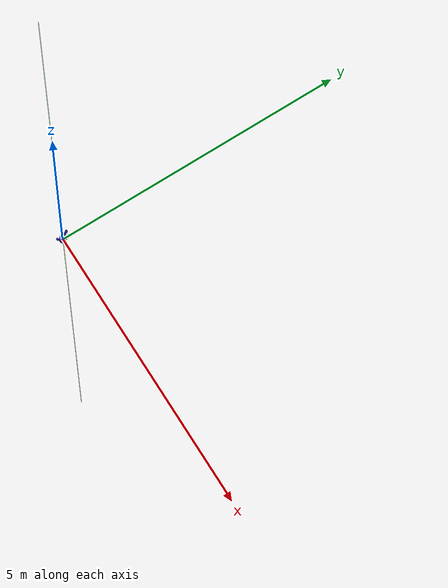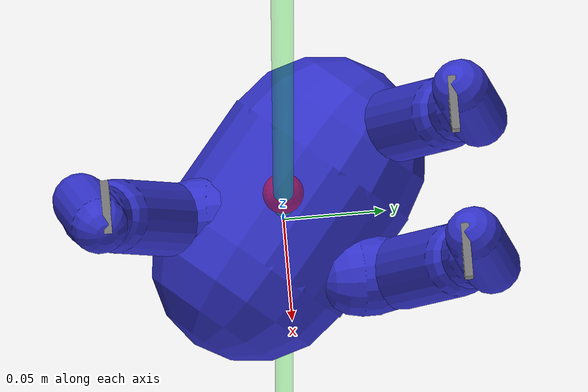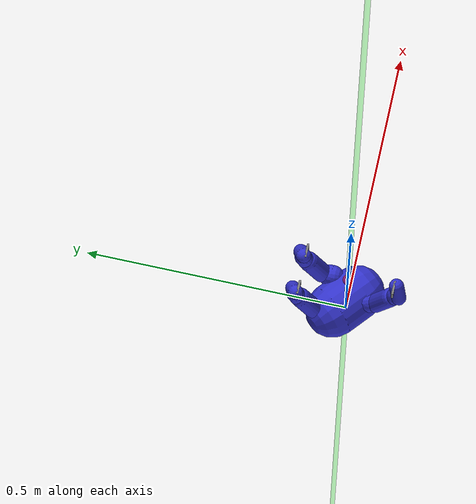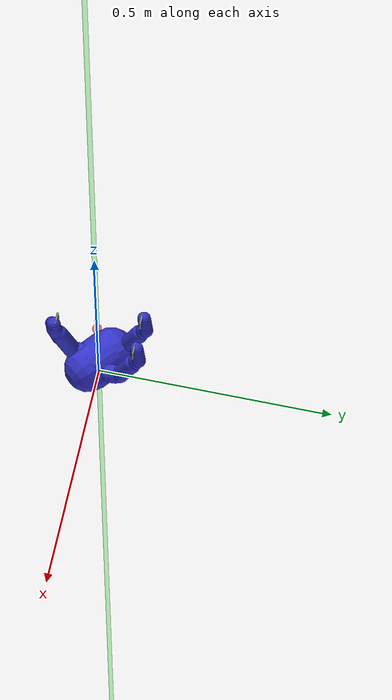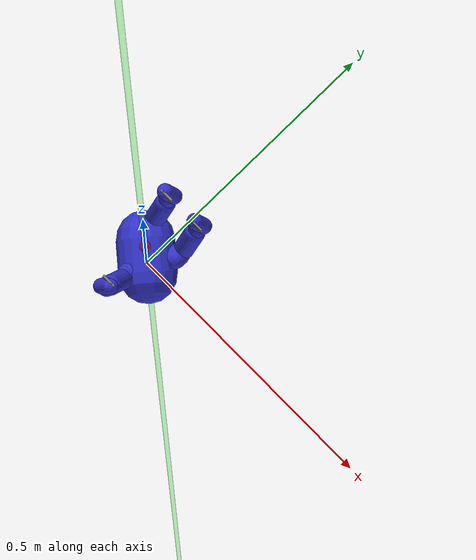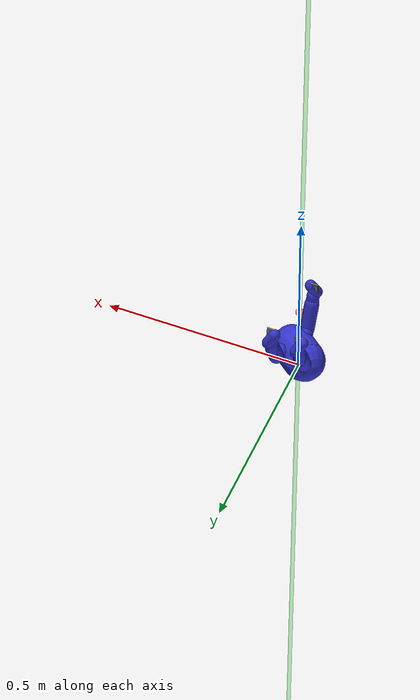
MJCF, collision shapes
<mujoco model="s-model_articulated">
  <asset>
    <mesh name="palm" file="meshes/robotiq_s_gripper/palm.stl"/>
    <mesh name="link_0" file="meshes/robotiq_s_gripper/link_0.stl"/>
    <mesh name="link_1" file="meshes/robotiq_s_gripper/link_1.stl"/>
    <mesh name="link_2" file="meshes/robotiq_s_gripper/link_2.stl"/>
    <mesh name="link_3" file="meshes/robotiq_s_gripper/link_3.stl"/>
    <mesh name="palm_vis" file="meshes/robotiq_s_gripper/palm_vis.stl"/>
    <mesh name="link_0_vis" file="meshes/robotiq_s_gripper/link_0_vis.stl"/>
    <mesh name="link_1_vis" file="meshes/robotiq_s_gripper/link_1_vis.stl"/>
    <mesh name="link_2_vis" file="meshes/robotiq_s_gripper/link_2_vis.stl"/>
    <mesh name="link_3_vis" file="meshes/robotiq_s_gripper/link_3_vis.stl"/>
  </asset>
  <tendon>
    <fixed name="middle12_cpl" range="0 1" limited="true">
      <joint joint="finger_middle_joint_1" coef="0.5"/>
      <joint joint="finger_middle_joint_2" coef="0.5"/>
    </fixed>
    <fixed name="middle23_cpl" range="0 1" limited="true">
      <joint joint="finger_middle_joint_2" coef="0.5"/>
      <joint joint="finger_middle_joint_3" coef="-1"/>
    </fixed>
    <fixed name="finger2_12_cpl" range="0 1" limited="true">
      <joint joint="finger_2_joint_1" coef="0.5"/>
      <joint joint="finger_2_joint_2" coef="0.5"/>
    </fixed>
    <fixed name="finger2_23_cpl" range="0 1" limited="true">
      <joint joint="finger_2_joint_2" coef="0.5"/>
      <joint joint="finger_2_joint_3" coef="-1"/>
    </fixed>
    <fixed name="finger1_12_cpl" range="0 1" limited="true">
      <joint joint="finger_1_joint_1" coef="0.5"/>
      <joint joint="finger_1_joint_2" coef="0.5"/>
    </fixed>
    <fixed name="finger1_23_cpl" range="0 1" limited="true">
      <joint joint="finger_1_joint_2" coef="0.5"/>
      <joint joint="finger_1_joint_3" coef="-1"/>
    </fixed>
  </tendon>
  <equality>
    <tendon name="middle12_cpl" tendon1="middle12_cpl"/>
    <tendon name="middle23_cpl" tendon1="middle23_cpl"/>
    <tendon name="finger2_12_cpl" tendon1="finger2_12_cpl"/>
    <tendon name="finger2_23_cpl" tendon1="finger2_23_cpl"/>
    <tendon name="finger1_12_cpl" tendon1="finger1_12_cpl"/>
    <tendon name="finger1_23_cpl" tendon1="finger1_23_cpl"/>
    <joint name="finger_12_scissor" joint1="palm_finger_2_joint" joint2="palm_finger_1_joint" polycoef="0 -1 0 0 0"/>
  </equality>
  <actuator>
    <position name="finger_1" ctrllimited="true" kp="20" joint="finger_1_joint_1" ctrlrange="0 1.2217"/>
    <position name="finger_2" ctrllimited="true" kp="20" joint="finger_2_joint_1" ctrlrange="0 1.2217"/>
    <position name="middle_finger" ctrllimited="true" kp="20" joint="finger_middle_joint_1" ctrlrange="0 1.2217"/>
    <position name="finger_scissor" ctrllimited="true" kp="20" joint="palm_finger_1_joint" ctrlrange="-0.29 0.29"/>
  </actuator>
  <worldbody>
    <body name="palm" pos="0 0 0.045" quat="-0.49921826 -0.50133955 0.50133955 0.49921826">
      <site name="ft_frame" pos="0 0 0" size="0.01 0.01 0.01" rgba="1 0 0 1" type="sphere" group="1"/>
      <inertial pos="-0.00134236 0.00263073 -1.01672e-08" quat="0.489887 0.489849 0.509908 0.509954" mass="1.20044" diaginertia="0.00263541 0.00218876 0.00210987"/>
      <geom name="palm_visual" type="mesh" contype="0" conaffinity="0" group="1" rgba="0 0 0 1" mesh="palm_vis"/>
      <geom name="palm" contype="0" type="capsule" group="0" rgba="0.2 0.2 0.8 0.5" pos="-0.002818 0.003976 0.001979" quat="0.342778 0.083170 0.935728 0.000000" size="0.051703 0.029495"/>
      <body name="eef" pos="0 0.15 0" quat="0.707105 -0.707105 0 0">
        <site name="grip_site" pos="0 0 0" size="0.01 0.01 0.01" rgba="1 0 0 0.5" type="sphere" group="1"/>
        <site name="ee_x" pos="0.1 0 0" size="0.005 .1" quat="0.707105  0 0.707108 0 " rgba="1 0 0 0" type="cylinder" group="1"/>
        <site name="ee_y" pos="0 0.1 0" size="0.005 .1" quat="0.707105 0.707108 0 0" rgba="0 1 0 0" type="cylinder" group="1"/>
        <site name="ee_z" pos="0 0 0.1" size="0.005 .1" quat="1 0 0 0" rgba="0 0 1 0" type="cylinder" group="1"/>
        <site name="grip_site_cylinder" pos="0 0 0" size="0.005 10" rgba="0 1 0 0.3" type="cylinder" group="1"/>
      </body>
      <body name="finger_1_link_0" pos="-0.0455 0.0214 0.036" quat="-2.59838e-06 0.706825 0.707388 2.59631e-06">
        <inertial pos="-0.0381134 0.026928 0.0359997" quat="0.0835458 0.702169 -0.0835699 0.702136" mass="0.0494545" diaginertia="1.39633e-05 1.10443e-05 9.98401e-06"/>
        <joint damping="0.1" name="palm_finger_1_joint" pos="0 0 0" axis="0 1 0" limited="true" range="-0.29 0.29" ref="0.29"/>
        <geom name="f1_l0_vis" pos="0.02 0 0" type="mesh" contype="0" conaffinity="0" group="1" rgba="0 0 0 1" mesh="link_0_vis"/>
        <geom name="f1_l0" contype="0" pos="0.005703 0.006546 -0.000005" type="capsule" rgba="0.2 0.2 0.8 0.5" group="0" quat="0.711081 -0.692088 0.124008 0.000000" size="0.019595 0.004898"/>
        <body name="finger_1_link_1" pos="0.02 0 0">
          <inertial pos="0.0184407 -0.0219985 -5.83379e-12" quat="0.170512 0.68624 -0.170512 0.68624" mass="0.0859984" diaginertia="6.46024e-05 5.9524e-05 1.50124e-05"/>
          <joint damping="0.03" name="finger_1_joint_1" pos="0 0 0" axis="0 0 1" limited="true" range="0 3.1416"/>
          <geom name="f1_l1_vis" pos="0.05 -0.028 0" quat="0.96639 0 0 -0.257081" type="mesh" contype="0" conaffinity="0" group="1" rgba="0 0 0 1" mesh="link_1_vis"/>
          <geom name="f1_l1" pos="0.020202 -0.023205 0.000000" quat="0.683341 -0.109567 -0.698566 -0.181784" type="capsule" rgba="0.2 0.2 0.8 0.5" group="0" size="0.018232 0.034453"/>
          <body name="finger_1_link_2" pos="0.05 -0.028 0" quat="0.96639 0 0 -0.257081">
            <inertial pos="0.0147516 -0.00823285 -0.000546645" quat="-0.0619175 0.704391 0.0619175 0.704391" mass="0.0461767" diaginertia="1.70717e-05 1.67626e-05 5.90767e-06"/>
            <joint damping="0.03" name="finger_1_joint_2" pos="0 0 0" axis="0 0 1" limited="true" range="0 3.1416"/>
            <geom name="f1_l2_vis" pos="0.039 0 0.0075" type="mesh" contype="0" conaffinity="0" group="1" rgba="0 0 0 1" mesh="link_2_vis"/>
            <geom name="f1_l2" pos="0.011309 -0.008899 -0.000547" type="capsule" rgba="0.2 0.2 0.8 0.5" group="0" quat="0.707107 -0.150366 0.690934 0.000000" size="0.015949 0.019375"/>
            <body name="finger_1_link_3" pos="0.039 0 0">
              <inertial pos="0.00866021 0.00239356 2.11103e-08" quat="0.653623 0.653626 -0.269769 -0.269767" mass="0.0227212" diaginertia="5.48529e-06 4.69221e-06 2.01594e-06"/>
              <joint damping="0.03" name="finger_1_joint_3" pos="0 0 0" axis="0 0 1" limited="true" range="0 3.1416"/>
              <geom name="f1_l3_vis" quat="0.96639 0 0 0.257081" type="mesh" contype="0" conaffinity="0" group="1" rgba="1 1 1 1" mesh="link_3_vis"/>
              <geom name="f1_l3" quat="0.823459 0.274703 -0.445496 0.219058" type="capsule" rgba="0.2 0.2 0.8 0.5" group="0" pos="0.010388 0.004421 -0.000626" size="0.014075 0.015375"/>
              <geom type="box" group="0" pos="0.018 0.018 0" quat="0.9659258 0 0 0.258819" size="0.013 0.002 0.013" name="f1_tip_collision"/>
              <geom type="box" group="0" pos="0.017 0.019 0" quat="0.9659258 0 0 0.258819" size="0.011 0.001 0.012" name="f1_pad_collision"/>
            </body>
          </body>
        </body>
      </body>
      <body name="finger_2_link_0" pos="-0.0455 0.0214 -0.036" quat="-2.59838e-06 0.706825 0.707388 2.59631e-06">
        <inertial pos="-0.0381134 0.026928 0.0359997" quat="0.0835458 0.702169 -0.0835699 0.702136" mass="0.0494545" diaginertia="1.39633e-05 1.10443e-05 9.98401e-06"/>
        <joint damping="0.1" name="palm_finger_2_joint" pos="0 0 0" axis="0 1 0" limited="true" range="-0.29 0.29" ref="-0.29"/>
        <geom name="f2_l0_vis" pos="0.02 0 0" type="mesh" contype="0" conaffinity="0" group="1" rgba="0 0 0 1" mesh="link_0_vis"/>
        <geom name="f2_l0" contype="0" pos="0.005703 0.006546 -0.000005" type="capsule" rgba="0.2 0.2 0.8 0.5" group="0" quat="0.711081 -0.692088 0.124008 0.000000" size="0.019595 0.004898"/>
        <body name="finger_2_link_1" pos="0.02 0 0">
          <inertial pos="0.0184407 -0.0219985 -5.83379e-12" quat="0.170512 0.68624 -0.170512 0.68624" mass="0.0859984" diaginertia="6.46024e-05 5.9524e-05 1.50124e-05"/>
          <joint damping="0.03" name="finger_2_joint_1" pos="0 0 0" axis="0 0 1" limited="true" range="0 3.1416"/>
          <geom name="f2_l1_vis" pos="0.05 -0.028 0" quat="0.96639 0 0 -0.257081" type="mesh" contype="0" conaffinity="0" group="1" rgba="0 0 0 1" mesh="link_1_vis"/>
          <geom name="f2_l1" pos="0.020202 -0.023205 0.000000" quat="0.683341 -0.109567 -0.698566 -0.181784" type="capsule" rgba="0.2 0.2 0.8 0.5" group="0" size="0.018232 0.034453"/>
          <body name="finger_2_link_2" pos="0.05 -0.028 0" quat="0.96639 0 0 -0.257081">
            <inertial pos="0.0147516 -0.00823285 -0.000546645" quat="-0.0619175 0.704391 0.0619175 0.704391" mass="0.0461767" diaginertia="1.70717e-05 1.67626e-05 5.90767e-06"/>
            <joint damping="0.03" name="finger_2_joint_2" pos="0 0 0" axis="0 0 1" limited="true" range="0 3.1416"/>
            <geom name="f2_l2_vis" pos="0.039 0 0.0075" type="mesh" contype="0" conaffinity="0" group="1" rgba="0 0 0 1" mesh="link_2_vis"/>
            <geom name="f2_l2" pos="0.011309 -0.008899 -0.000547" type="capsule" rgba="0.2 0.2 0.8 0.5" group="0" quat="0.707107 -0.150366 0.690934 0.000000" size="0.015949 0.019375"/>
            <body name="finger_2_link_3" pos="0.039 0 0">
              <inertial pos="0.00866021 0.00239356 2.11103e-08" quat="0.653623 0.653626 -0.269769 -0.269767" mass="0.0227212" diaginertia="5.48529e-06 4.69221e-06 2.01594e-06"/>
              <joint damping="0.03" name="finger_2_joint_3" pos="0 0 0" axis="0 0 1" limited="true" range="0 3.1416"/>
              <geom name="f2_l3_vis" quat="0.96639 0 0 0.257081" type="mesh" contype="0" conaffinity="0" group="1" rgba="1 1 1 1" mesh="link_3_vis"/>
              <geom name="f2_l3" quat="0.823459 0.274703 -0.445496 0.219058" type="capsule" rgba="0.2 0.2 0.8 0.5" group="0" pos="0.010388 0.004421 -0.000626" size="0.014075 0.015375"/>
              <geom type="box" group="0" pos="0.018 0.018 0" quat="0.9659258 0 0 0.258819" size="0.013 0.002 0.013" name="f2_tip_collision"/>
              <geom type="box" group="0" pos="0.017 0.019 0" quat="0.9659258 0 0 0.258819" size="0.011 0.001 0.012" name="f2_pad_collision"/>
            </body>
          </body>
        </body>
      </body>
      <body name="finger_middle_link_0" pos="0.0455 0.0214 0" quat="0.707388 0 0 0.706825">
        <inertial pos="-0.0381134 0.026928 0.0359997" quat="0.0835458 0.702169 -0.0835699 0.702136" mass="0.0494545" diaginertia="1.39633e-05 1.10443e-05 9.98401e-06"/>
        <geom name="f3_l0_vis" pos="0.02 0 0" type="mesh" contype="0" conaffinity="0" group="1" rgba="0 0 0 1" mesh="link_0_vis"/>
        <geom name="f3_l0" contype="0" pos="0.005703 0.006546 -0.000005" type="capsule" rgba="0.2 0.2 0.8 0.5" group="0" quat="0.711081 -0.692088 0.124008 0.000000" size="0.019595 0.004898"/>
        <body name="finger_middle_link_1" pos="0.02 0 0">
          <inertial pos="0.0184407 -0.0219985 -5.83379e-12" quat="0.170512 0.68624 -0.170512 0.68624" mass="0.0859984" diaginertia="6.46024e-05 5.9524e-05 1.50124e-05"/>
          <joint damping="0.03" name="finger_middle_joint_1" pos="0 0 0" axis="0 0 1" limited="true" range="0 3.1416"/>
          <geom name="f3_l1_vis" pos="0.05 -0.028 0" quat="0.96639 0 0 -0.257081" type="mesh" contype="0" conaffinity="0" group="1" rgba="0 0 0 1" mesh="link_1_vis"/>
          <geom name="f3_l1" pos="0.020202 -0.023205 0.000000" quat="0.683341 -0.109567 -0.698566 -0.181784" type="capsule" rgba="0.2 0.2 0.8 0.5" group="0" size="0.018232 0.034453"/>
          <body name="finger_middle_link_2" pos="0.05 -0.028 0" quat="0.96639 0 0 -0.257081">
            <inertial pos="0.0147516 -0.00823285 -0.000546645" quat="-0.0619175 0.704391 0.0619175 0.704391" mass="0.0461767" diaginertia="1.70717e-05 1.67626e-05 5.90767e-06"/>
            <joint damping="0.03" name="finger_middle_joint_2" pos="0 0 0" axis="0 0 1" limited="true" range="0 3.1416"/>
            <geom name="f3_l2_vis" pos="0.039 0 0.0075" type="mesh" contype="0" conaffinity="0" group="1" rgba="0 0 0 1" mesh="link_2_vis"/>
            <geom name="f3_l2" pos="0.011309 -0.008899 -0.000547" type="capsule" rgba="0.2 0.2 0.8 0.5" group="0" quat="0.707107 -0.150366 0.690934 0.000000" size="0.015949 0.019375"/>
            <body name="finger_middle_link_3" pos="0.039 0 0">
              <inertial pos="0.00866021 0.00239356 2.11103e-08" quat="0.653623 0.653626 -0.269769 -0.269767" mass="0.0227212" diaginertia="5.48529e-06 4.69221e-06 2.01594e-06"/>
              <joint damping="0.03" name="finger_middle_joint_3" pos="0 0 0" axis="0 0 1" limited="true" range="0 3.1416"/>
              <geom name="f3_l3_vis" quat="0.96639 0 0 0.257081" type="mesh" contype="0" conaffinity="0" group="1" rgba="1 1 1 1" mesh="link_3_vis"/>
              <geom name="f3_l3" quat="0.823459 0.274703 -0.445496 0.219058" type="capsule" rgba="0.2 0.2 0.8 0.5" group="0" pos="0.010388 0.004421 -0.000626" size="0.014075 0.015375"/>
              <geom type="box" group="0" pos="0.018 0.018 0" quat="0.9659258 0 0 0.258819" size="0.013 0.002 0.013" name="finger_middle_tip_collision"/>
              <geom type="box" group="0" pos="0.017 0.019 0" quat="0.9659258 0 0 0.258819" size="0.011 0.001 0.012" name="finger_middle_pad_collision"/>
            </body>
          </body>
        </body>
      </body>
    </body>
  </worldbody>
  <sensor>
    <force name="force_ee" site="ft_frame"/>
    <torque name="torque_ee" site="ft_frame"/>
  </sensor>
</mujoco>
